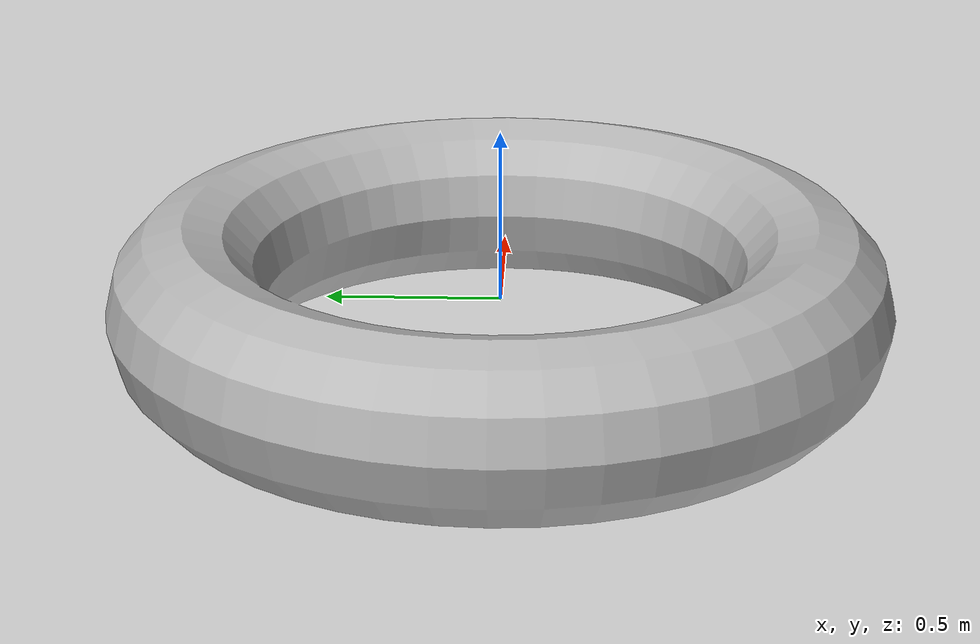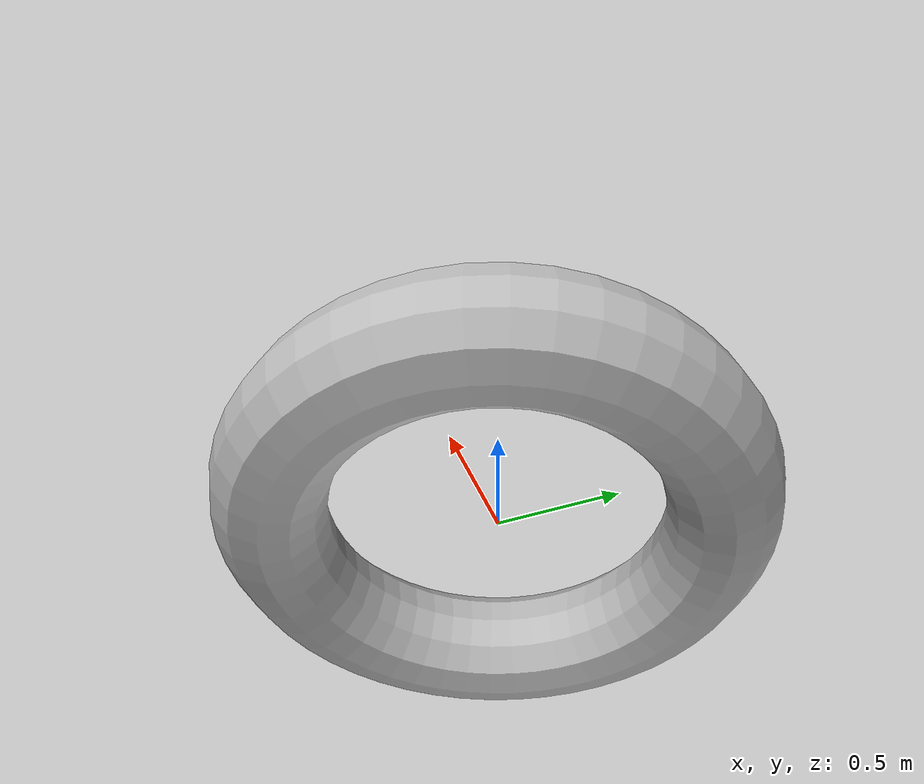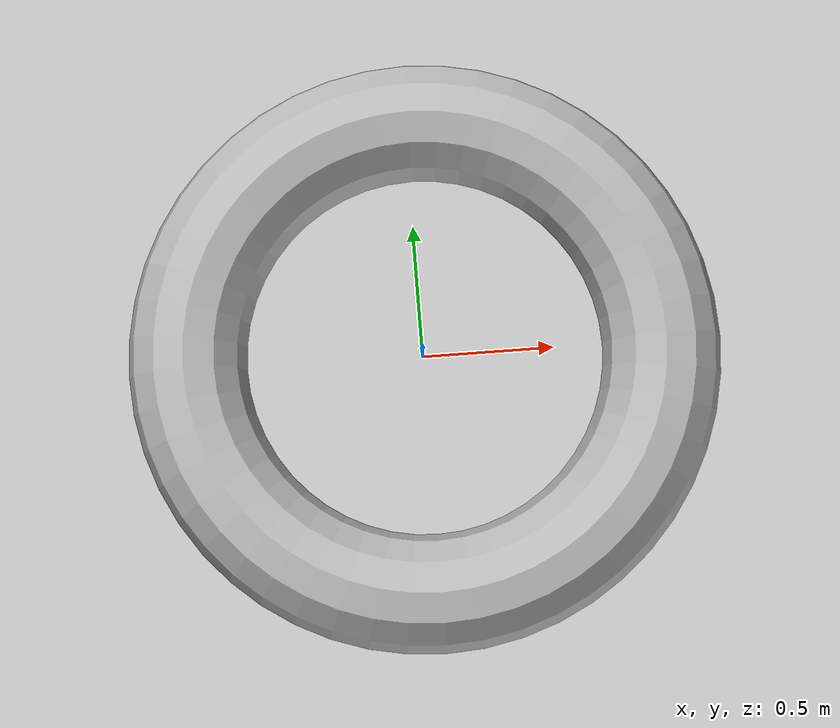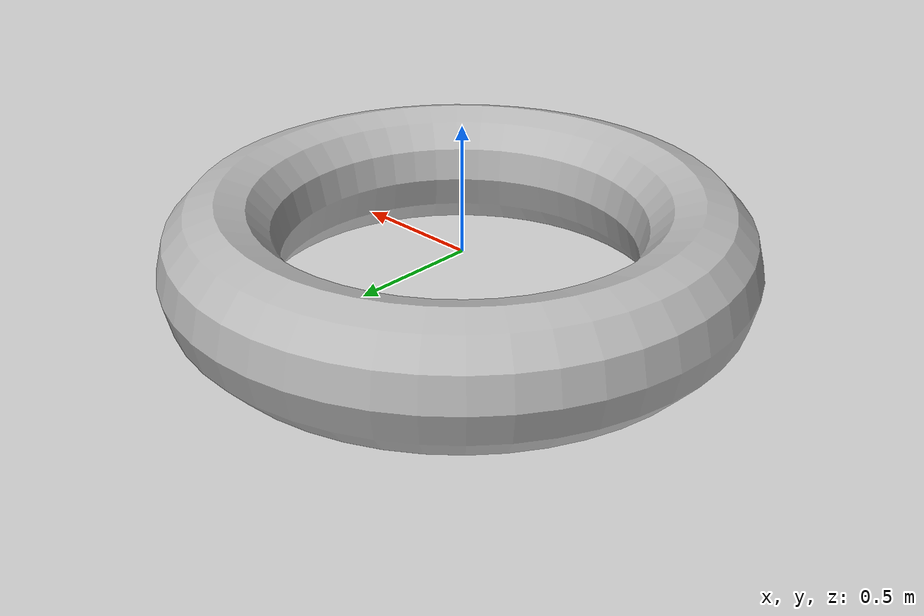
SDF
<?xml version="1.0" ?>
<sdf version='1.5'>
  <model name="push_ico1">
      <link name='link'>
        <inertial>
        <pose>0 0 0 0 0 0</pose>
          <mass>0.2</mass>
          <inertia>
            <ixx>0.451</ixx>
            <ixy>0.0</ixy>
            <ixz>0.0</ixz>
            <iyy>0.451</iyy>
            <iyz>0.0</iyz>
            <izz>0.451</izz>
          </inertia>
        </inertial>
        <collision name='collision'>
        <pose>0 0 0 0 0 0</pose>
          <geometry>
            <mesh>
              <uri>model://push_ico1/meshes/push_ico1.dae</uri>
              <scale>0.9 0.9 1</scale>
            </mesh>
          </geometry>
            <surface>
            <friction>
              <ode>
                <mu>30.0</mu>
                <mu2>30.0</mu2>
              </ode>
            </friction>
          </surface>
        </collision>
        <visual name='visual'>
          <geometry>
            <mesh>
              <uri>model://push_ico1/meshes/push_ico1.dae</uri>
              <scale>0.9 0.9 1</scale>
            </mesh>
          </geometry>
        </visual>
        <gravity>1</gravity>
      </link>
  </model>
</sdf>
